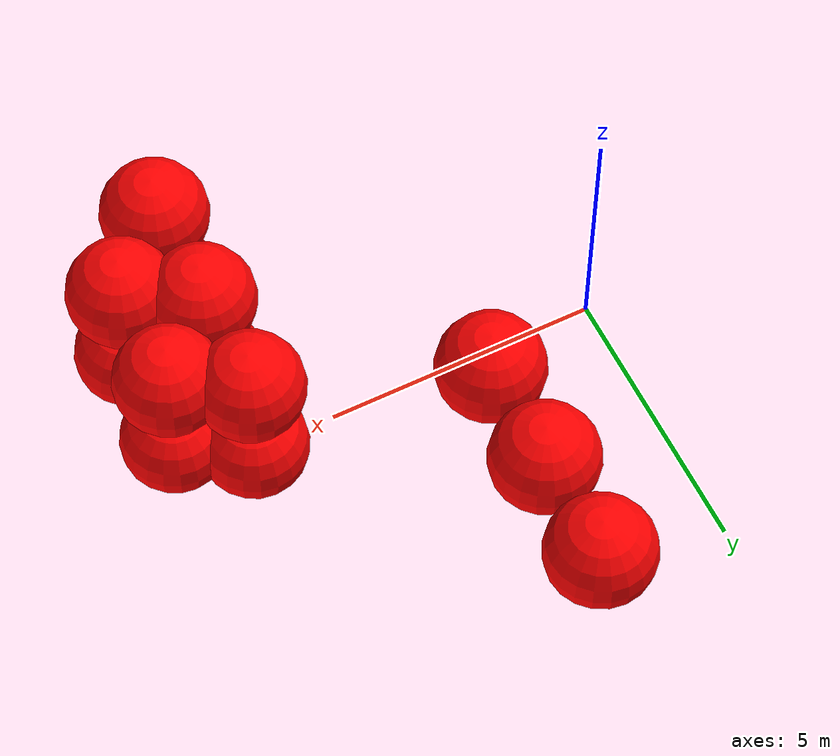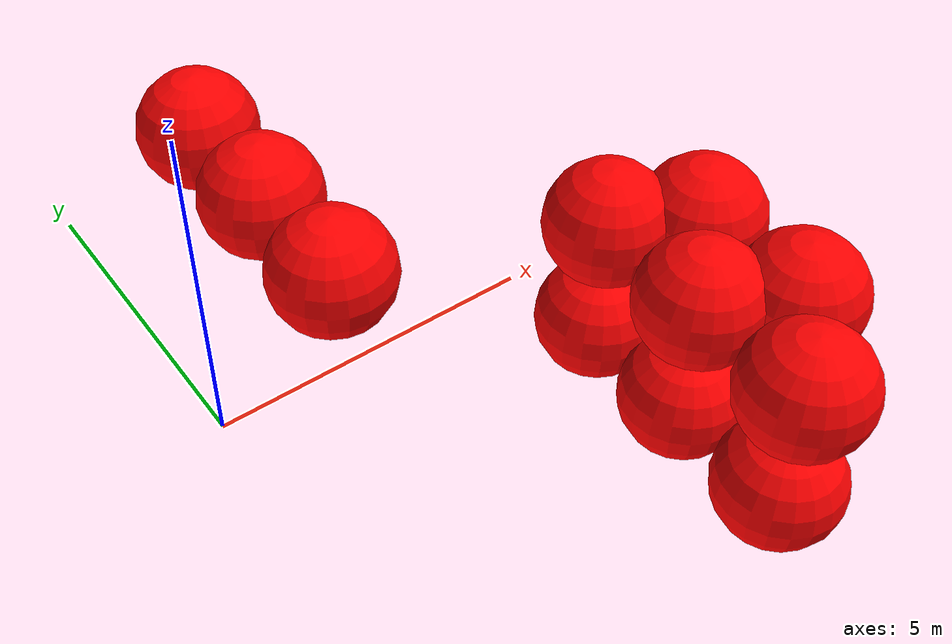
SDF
<sdf version="1.8">
 <world name="3d_world">
  <model name="obstacle_9" canonical_link="obstacle">
   <static>true</static>
   <pose relative_to="world">6.25 -4.68 -1.00 0 0 0</pose>
   <link name="obstacle">
    <pose relative_to="__model__">0.0 0 0.0 0 0 0</pose>
    <visual name="visual">
     <geometry><sphere><radius>1.00</radius></sphere></geometry>
     <material>
      <ambient>1.0 0.0 0.0 1</ambient>
      <diffuse>1.0 0.0 0.0 1</diffuse>
      <specular>1.0 0.0 0.0 1</specular>
     </material>
    </visual>
    <collision name="collision"><geometry><sphere><radius>1.00</radius></sphere></geometry></collision>
    <enable_gravity>false</enable_gravity>
   </link>
   <plugin filename="ignition-gazebo-velocity-control-system" name="ignition::gazebo::systems::VelocityControl">
    <initial_linear>0.00 0.00 0.00</initial_linear>
    <initial_angular>0 0 0</initial_angular>
   </plugin>
   <plugin filename="ignition-gazebo-odometry-publisher-system" name="ignition::gazebo::systems::OdometryPublisher">
    <dimensions>3</dimensions>
   </plugin>
  </model>
  <model name="obstacle_10" canonical_link="obstacle">
   <static>true</static>
   <pose relative_to="world">6.25 -2.68 -1.00 0 0 0</pose>
   <link name="obstacle">
    <pose relative_to="__model__">0.0 0 0.0 0 0 0</pose>
    <visual name="visual">
     <geometry><sphere><radius>1.00</radius></sphere></geometry>
     <material>
      <ambient>1.0 0.0 0.0 1</ambient>
      <diffuse>1.0 0.0 0.0 1</diffuse>
      <specular>1.0 0.0 0.0 1</specular>
     </material>
    </visual>
    <collision name="collision"><geometry><sphere><radius>1.00</radius></sphere></geometry></collision>
    <enable_gravity>false</enable_gravity>
   </link>
   <plugin filename="ignition-gazebo-velocity-control-system" name="ignition::gazebo::systems::VelocityControl">
    <initial_linear>0.00 0.00 0.00</initial_linear>
    <initial_angular>0 0 0</initial_angular>
   </plugin>
   <plugin filename="ignition-gazebo-odometry-publisher-system" name="ignition::gazebo::systems::OdometryPublisher">
    <dimensions>3</dimensions>
   </plugin>
  </model>
  <model name="obstacle_11" canonical_link="obstacle">
   <static>true</static>
   <pose relative_to="world">6.25 -0.68 -1.00 0 0 0</pose>
   <link name="obstacle">
    <pose relative_to="__model__">0.0 0 0.0 0 0 0</pose>
    <visual name="visual">
     <geometry><sphere><radius>1.00</radius></sphere></geometry>
     <material>
      <ambient>1.0 0.0 0.0 1</ambient>
      <diffuse>1.0 0.0 0.0 1</diffuse>
      <specular>1.0 0.0 0.0 1</specular>
     </material>
    </visual>
    <collision name="collision"><geometry><sphere><radius>1.00</radius></sphere></geometry></collision>
    <enable_gravity>false</enable_gravity>
   </link>
   <plugin filename="ignition-gazebo-velocity-control-system" name="ignition::gazebo::systems::VelocityControl">
    <initial_linear>0.00 0.00 0.00</initial_linear>
    <initial_angular>0 0 0</initial_angular>
   </plugin>
   <plugin filename="ignition-gazebo-odometry-publisher-system" name="ignition::gazebo::systems::OdometryPublisher">
    <dimensions>3</dimensions>
   </plugin>
  </model>
  <model name="obstacle_12" canonical_link="obstacle">
   <static>true</static>
   <pose relative_to="world">6.25 -4.68 1.00 0 0 0</pose>
   <link name="obstacle">
    <pose relative_to="__model__">0.0 0 0.0 0 0 0</pose>
    <visual name="visual">
     <geometry><sphere><radius>1.00</radius></sphere></geometry>
     <material>
      <ambient>1.0 0.0 0.0 1</ambient>
      <diffuse>1.0 0.0 0.0 1</diffuse>
      <specular>1.0 0.0 0.0 1</specular>
     </material>
    </visual>
    <collision name="collision"><geometry><sphere><radius>1.00</radius></sphere></geometry></collision>
    <enable_gravity>false</enable_gravity>
   </link>
   <plugin filename="ignition-gazebo-velocity-control-system" name="ignition::gazebo::systems::VelocityControl">
    <initial_linear>0.00 0.00 0.00</initial_linear>
    <initial_angular>0 0 0</initial_angular>
   </plugin>
   <plugin filename="ignition-gazebo-odometry-publisher-system" name="ignition::gazebo::systems::OdometryPublisher">
    <dimensions>3</dimensions>
   </plugin>
  </model>
  <model name="obstacle_13" canonical_link="obstacle">
   <static>true</static>
   <pose relative_to="world">6.25 -2.68 1.00 0 0 0</pose>
   <link name="obstacle">
    <pose relative_to="__model__">0.0 0 0.0 0 0 0</pose>
    <visual name="visual">
     <geometry><sphere><radius>1.00</radius></sphere></geometry>
     <material>
      <ambient>1.0 0.0 0.0 1</ambient>
      <diffuse>1.0 0.0 0.0 1</diffuse>
      <specular>1.0 0.0 0.0 1</specular>
     </material>
    </visual>
    <collision name="collision"><geometry><sphere><radius>1.00</radius></sphere></geometry></collision>
    <enable_gravity>false</enable_gravity>
   </link>
   <plugin filename="ignition-gazebo-velocity-control-system" name="ignition::gazebo::systems::VelocityControl">
    <initial_linear>0.00 0.00 0.00</initial_linear>
    <initial_angular>0 0 0</initial_angular>
   </plugin>
   <plugin filename="ignition-gazebo-odometry-publisher-system" name="ignition::gazebo::systems::OdometryPublisher">
    <dimensions>3</dimensions>
   </plugin>
  </model>
  <model name="obstacle_14" canonical_link="obstacle">
   <static>true</static>
   <pose relative_to="world">6.25 -0.68 1.00 0 0 0</pose>
   <link name="obstacle">
    <pose relative_to="__model__">0.0 0 0.0 0 0 0</pose>
    <visual name="visual">
     <geometry><sphere><radius>1.00</radius></sphere></geometry>
     <material>
      <ambient>1.0 0.0 0.0 1</ambient>
      <diffuse>1.0 0.0 0.0 1</diffuse>
      <specular>1.0 0.0 0.0 1</specular>
     </material>
    </visual>
    <collision name="collision"><geometry><sphere><radius>1.00</radius></sphere></geometry></collision>
    <enable_gravity>false</enable_gravity>
   </link>
   <plugin filename="ignition-gazebo-velocity-control-system" name="ignition::gazebo::systems::VelocityControl">
    <initial_linear>0.00 0.00 0.00</initial_linear>
    <initial_angular>0 0 0</initial_angular>
   </plugin>
   <plugin filename="ignition-gazebo-odometry-publisher-system" name="ignition::gazebo::systems::OdometryPublisher">
    <dimensions>3</dimensions>
   </plugin>
  </model>
  <model name="obstacle_18" canonical_link="obstacle">
   <static>true</static>
   <pose relative_to="world">2.36 0.82 1.00 0 0 0</pose>
   <link name="obstacle">
    <pose relative_to="__model__">0.0 0 0.0 0 0 0</pose>
    <visual name="visual">
     <geometry><sphere><radius>1.00</radius></sphere></geometry>
     <material>
      <ambient>1.0 0.0 0.0 1</ambient>
      <diffuse>1.0 0.0 0.0 1</diffuse>
      <specular>1.0 0.0 0.0 1</specular>
     </material>
    </visual>
    <collision name="collision"><geometry><sphere><radius>1.00</radius></sphere></geometry></collision>
    <enable_gravity>false</enable_gravity>
   </link>
   <plugin filename="ignition-gazebo-velocity-control-system" name="ignition::gazebo::systems::VelocityControl">
    <initial_linear>0.00 0.00 0.00</initial_linear>
    <initial_angular>0 0 0</initial_angular>
   </plugin>
   <plugin filename="ignition-gazebo-odometry-publisher-system" name="ignition::gazebo::systems::OdometryPublisher">
    <dimensions>3</dimensions>
   </plugin>
  </model>
  <model name="obstacle_19" canonical_link="obstacle">
   <static>true</static>
   <pose relative_to="world">2.36 2.82 1.00 0 0 0</pose>
   <link name="obstacle">
    <pose relative_to="__model__">0.0 0 0.0 0 0 0</pose>
    <visual name="visual">
     <geometry><sphere><radius>1.00</radius></sphere></geometry>
     <material>
      <ambient>1.0 0.0 0.0 1</ambient>
      <diffuse>1.0 0.0 0.0 1</diffuse>
      <specular>1.0 0.0 0.0 1</specular>
     </material>
    </visual>
    <collision name="collision"><geometry><sphere><radius>1.00</radius></sphere></geometry></collision>
    <enable_gravity>false</enable_gravity>
   </link>
   <plugin filename="ignition-gazebo-velocity-control-system" name="ignition::gazebo::systems::VelocityControl">
    <initial_linear>0.00 0.00 0.00</initial_linear>
    <initial_angular>0 0 0</initial_angular>
   </plugin>
   <plugin filename="ignition-gazebo-odometry-publisher-system" name="ignition::gazebo::systems::OdometryPublisher">
    <dimensions>3</dimensions>
   </plugin>
  </model>
  <model name="obstacle_20" canonical_link="obstacle">
   <static>true</static>
   <pose relative_to="world">2.36 4.82 1.00 0 0 0</pose>
   <link name="obstacle">
    <pose relative_to="__model__">0.0 0 0.0 0 0 0</pose>
    <visual name="visual">
     <geometry><sphere><radius>1.00</radius></sphere></geometry>
     <material>
      <ambient>1.0 0.0 0.0 1</ambient>
      <diffuse>1.0 0.0 0.0 1</diffuse>
      <specular>1.0 0.0 0.0 1</specular>
     </material>
    </visual>
    <collision name="collision"><geometry><sphere><radius>1.00</radius></sphere></geometry></collision>
    <enable_gravity>false</enable_gravity>
   </link>
   <plugin filename="ignition-gazebo-velocity-control-system" name="ignition::gazebo::systems::VelocityControl">
    <initial_linear>0.00 0.00 0.00</initial_linear>
    <initial_angular>0 0 0</initial_angular>
   </plugin>
   <plugin filename="ignition-gazebo-odometry-publisher-system" name="ignition::gazebo::systems::OdometryPublisher">
    <dimensions>3</dimensions>
   </plugin>
  </model>
  <model name="obstacle_21" canonical_link="obstacle">
   <static>true</static>
   <pose relative_to="world">7.46 -3.41 -1.00 0 0 0</pose>
   <link name="obstacle">
    <pose relative_to="__model__">0.0 0 0.0 0 0 0</pose>
    <visual name="visual">
     <geometry><sphere><radius>1.00</radius></sphere></geometry>
     <material>
      <ambient>1.0 0.0 0.0 1</ambient>
      <diffuse>1.0 0.0 0.0 1</diffuse>
      <specular>1.0 0.0 0.0 1</specular>
     </material>
    </visual>
    <collision name="collision"><geometry><sphere><radius>1.00</radius></sphere></geometry></collision>
    <enable_gravity>false</enable_gravity>
   </link>
   <plugin filename="ignition-gazebo-velocity-control-system" name="ignition::gazebo::systems::VelocityControl">
    <initial_linear>0.00 0.00 0.00</initial_linear>
    <initial_angular>0 0 0</initial_angular>
   </plugin>
   <plugin filename="ignition-gazebo-odometry-publisher-system" name="ignition::gazebo::systems::OdometryPublisher">
    <dimensions>3</dimensions>
   </plugin>
  </model>
  <model name="obstacle_22" canonical_link="obstacle">
   <static>true</static>
   <pose relative_to="world">7.46 -1.41 -1.00 0 0 0</pose>
   <link name="obstacle">
    <pose relative_to="__model__">0.0 0 0.0 0 0 0</pose>
    <visual name="visual">
     <geometry><sphere><radius>1.00</radius></sphere></geometry>
     <material>
      <ambient>1.0 0.0 0.0 1</ambient>
      <diffuse>1.0 0.0 0.0 1</diffuse>
      <specular>1.0 0.0 0.0 1</specular>
     </material>
    </visual>
    <collision name="collision"><geometry><sphere><radius>1.00</radius></sphere></geometry></collision>
    <enable_gravity>false</enable_gravity>
   </link>
   <plugin filename="ignition-gazebo-velocity-control-system" name="ignition::gazebo::systems::VelocityControl">
    <initial_linear>0.00 0.00 0.00</initial_linear>
    <initial_angular>0 0 0</initial_angular>
   </plugin>
   <plugin filename="ignition-gazebo-odometry-publisher-system" name="ignition::gazebo::systems::OdometryPublisher">
    <dimensions>3</dimensions>
   </plugin>
  </model>
  <model name="obstacle_23" canonical_link="obstacle">
   <static>true</static>
   <pose relative_to="world">7.46 -3.41 1.00 0 0 0</pose>
   <link name="obstacle">
    <pose relative_to="__model__">0.0 0 0.0 0 0 0</pose>
    <visual name="visual">
     <geometry><sphere><radius>1.00</radius></sphere></geometry>
     <material>
      <ambient>1.0 0.0 0.0 1</ambient>
      <diffuse>1.0 0.0 0.0 1</diffuse>
      <specular>1.0 0.0 0.0 1</specular>
     </material>
    </visual>
    <collision name="collision"><geometry><sphere><radius>1.00</radius></sphere></geometry></collision>
    <enable_gravity>false</enable_gravity>
   </link>
   <plugin filename="ignition-gazebo-velocity-control-system" name="ignition::gazebo::systems::VelocityControl">
    <initial_linear>0.00 0.00 0.00</initial_linear>
    <initial_angular>0 0 0</initial_angular>
   </plugin>
   <plugin filename="ignition-gazebo-odometry-publisher-system" name="ignition::gazebo::systems::OdometryPublisher">
    <dimensions>3</dimensions>
   </plugin>
  </model>
  <model name="obstacle_24" canonical_link="obstacle">
   <static>true</static>
   <pose relative_to="world">7.46 -1.41 1.00 0 0 0</pose>
   <link name="obstacle">
    <pose relative_to="__model__">0.0 0 0.0 0 0 0</pose>
    <visual name="visual">
     <geometry><sphere><radius>1.00</radius></sphere></geometry>
     <material>
      <ambient>1.0 0.0 0.0 1</ambient>
      <diffuse>1.0 0.0 0.0 1</diffuse>
      <specular>1.0 0.0 0.0 1</specular>
     </material>
    </visual>
    <collision name="collision"><geometry><sphere><radius>1.00</radius></sphere></geometry></collision>
    <enable_gravity>false</enable_gravity>
   </link>
   <plugin filename="ignition-gazebo-velocity-control-system" name="ignition::gazebo::systems::VelocityControl">
    <initial_linear>0.00 0.00 0.00</initial_linear>
    <initial_angular>0 0 0</initial_angular>
   </plugin>
   <plugin filename="ignition-gazebo-odometry-publisher-system" name="ignition::gazebo::systems::OdometryPublisher">
    <dimensions>3</dimensions>
   </plugin>
  </model>
 </world>
</sdf>
